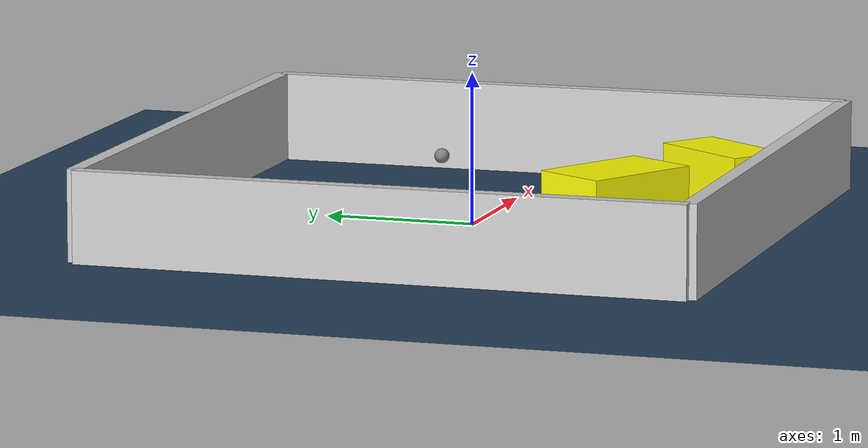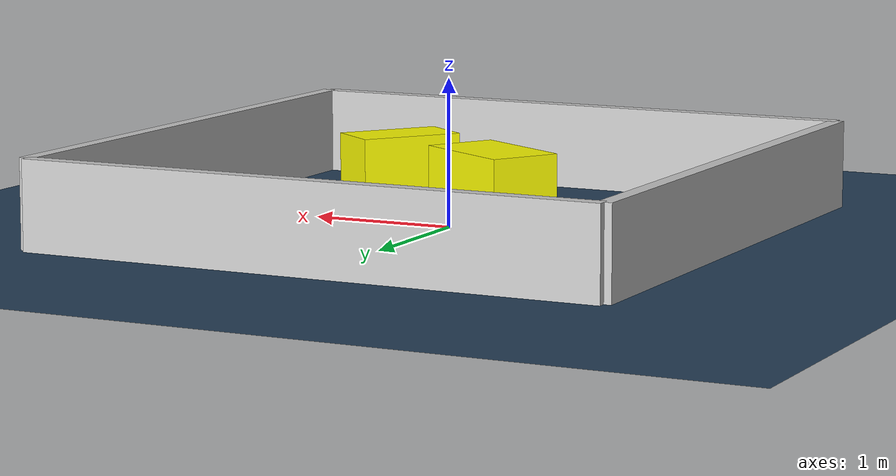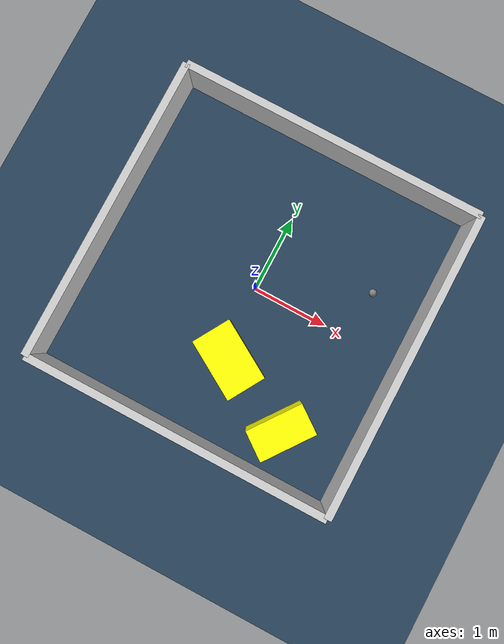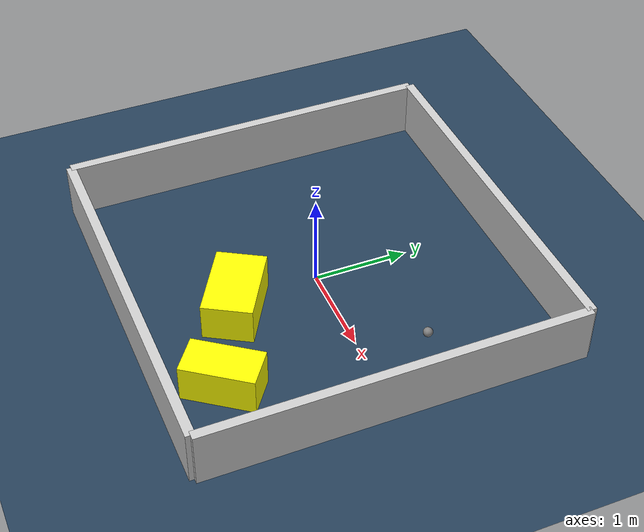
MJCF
<?xml version="1.0" ?>
<mujoco model="generated_environment">
  <option timestep="0.01" integrator="RK4" cone="elliptic"/>
  <default>
    <geom density="1"/>
  </default>
  <asset>
    <texture builtin="gradient" height="3072" rgb1="0.3 0.5 0.7" rgb2="0 0 0" type="skybox" width="512"/>
    <texture builtin="checker" height="300" mark="edge" markrgb="0.8 0.8 0.8" name="groundplane" rgb1="0.2 0.3 0.4" rgb2="0.1 0.2 0.3" type="2d" width="300"/>
    <material name="groundplane" reflectance="0.2" texrepeat="5 5" texture="groundplane" texuniform="true"/>
    <material name="robot" rgba="0.0 1.0 0.0 1"/>
  </asset>
  <worldbody>
    <light dir="0 0 -1" directional="true" pos="0 0 1.5"/>
    <geom condim="4" friction="1.0 0.005 0.001" material="groundplane" name="floor" size="0 0 0.05" type="plane"/>
    <body name="walls">
      <geom name="wall_1" condim="4" pos="-2.0 0.0 0.3" rgba="0.800000011920929 0.800000011920929 0.800000011920929 1.0" size="0.05 2.0 0.3" type="box"/>
      <geom name="wall_2" condim="4" pos="2.0 0.0 0.3" rgba="0.800000011920929 0.800000011920929 0.800000011920929 1.0" size="0.05 2.0 0.3" type="box"/>
      <geom name="wall_3" condim="4" pos="0.0 -2.0 0.3" rgba="0.800000011920929 0.800000011920929 0.800000011920929 1.0" size="2.0 0.05 0.3" type="box"/>
      <geom name="wall_4" condim="4" pos="0.0 2.0 0.3" rgba="0.800000011920929 0.800000011920929 0.800000011920929 1.0" size="2.0 0.05 0.3" type="box"/>
    </body>
    <body name="robot">
      <joint name="joint_x" type="slide" pos="0 0 0" axis="1 0 0"/>
      <joint name="joint_y" type="slide" pos="0 0 0" axis="0 1 0"/>
      <geom name="robot" type="sphere" pos="1.320776279903829 0.6279162816015078 0.2" size="0.05" mass="5." friction="1.0 0.005 0.0001" condim="4"/>
      <site name="sensor_ball"/>
    </body>
    <body name="obstacle_1_movable">
      <geom name="obstacle_1_movable" condim="4" pos="0.1304854100831747 -0.9303121420972293 0.2" euler="0 0 149.1960729866962" friction="1.0 0.005 0.001" rgba="1 1 0 1" size="0.4136254334167685 0.26088621246921784 0.2" type="box" mass="0.1"/>
      <joint type="free"/>
    </body>
    <body name="obstacle_2_movable">
      <geom name="obstacle_2_movable" condim="4" pos="1.0935710039052673 -1.3984212899501522 0.2" euler="0 0 53.5670113916442" friction="1.0 0.005 0.001" rgba="1 1 0 1" size="0.3769877928072656 0.205344890072788 0.2" type="box" mass="0.1"/>
      <joint type="free"/>
    </body>
  </worldbody>
  <actuator>
    <motor name="actuator_x" joint="joint_x" gear="1" ctrlrange="-1 1"/>
    <motor name="actuator_y" joint="joint_y" gear="1" ctrlrange="-1 1"/>
  </actuator>
</mujoco>
